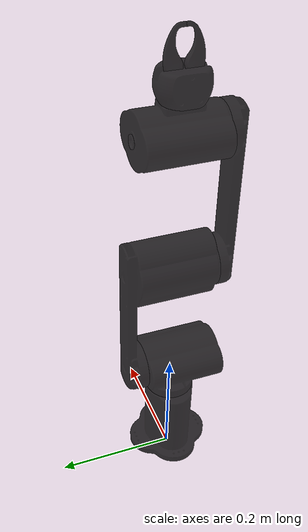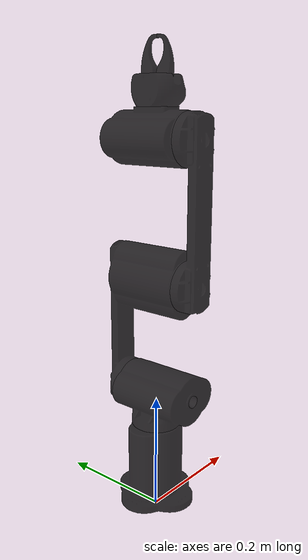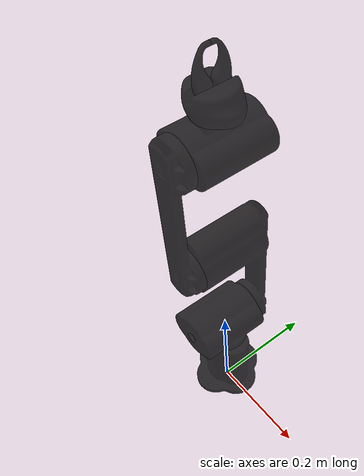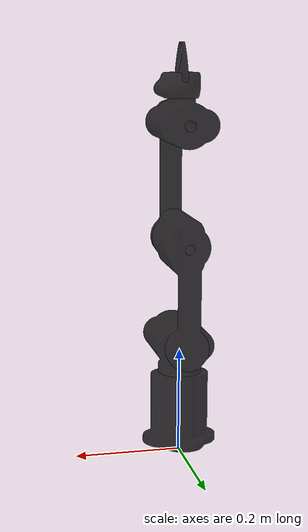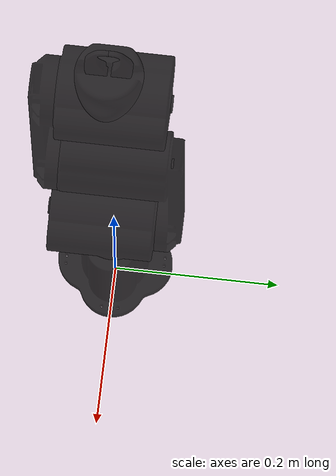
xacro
<?xml version="1.0"?>
<robot name="mover4" xmlns:xacro="http://www.ros.org/wiki/xacro">
<xacro:include filename="$(find mover4_arm_description)/urdf/macro.xacro" />
<xacro:base_footprint_link_no_inertial_for_gasebo child_link="base_link" />

<xacro:include filename="$(find mover4_arm_description)/urdf/mover4_arm_hardware_macro.urdf.xacro" />
<xacro:mover4_arm_hardware/>
</robot>

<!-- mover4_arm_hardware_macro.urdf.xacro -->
<robot name="mover4" xmlns:xacro="http://www.ros.org/wiki/xacro">
<xacro:macro name="mover4_arm_hardware">
<link name="base_link">
<pose>0 0 0.1 0 0 0</pose>
    <inertial>
      <mass value="0.5"/>
      <origin xyz="0 0 0"/>
      <inertia ixx="0.0001" ixy="0.0" ixz="0.0" iyy="0.0001" iyz="0.0" izz="0.0001"/>
    </inertial>

    <visual>
	<origin rpy="0 0 0" xyz="0 0 0.0"/>
      <geometry>
	<mesh filename="package://robko18_description/meshes/Joint0.dae" scale="0.001 0.001 0.001"/>
      </geometry>
      <material name="black">
        <color rgba="0 0 0 0.8"/>
      </material>
    </visual>
    <collision>
      <origin xyz="0 0 0" rpy="0 0 0" />
      <geometry>
        <mesh filename="package://robko18_description/meshes/Joint0Coll.dae" scale="0.001 0.001 0.001"/>
      </geometry>
    </collision>
  </link>

 <link name="geoJoint1">
     <inertial>
      <mass value="0.0001"/>
      <origin xyz="0 0 0"/>
      <inertia ixx="0.0001" ixy="0.0" ixz="0.0" iyy="0.0001" iyz="0.0" izz="0.0001"/>
    </inertial>

    <visual>
	<origin rpy="0 0 0" xyz="0 0 0.0"/>
      <geometry>
	<mesh filename="package://robko18_description/meshes/Joint1.dae" scale="0.001 0.001 0.001"/>
      </geometry>
      <material name="black">
        <color rgba="0 0 0 0.8"/>
      </material>
    </visual>
    <collision>
      <origin xyz="0 0 0.0" rpy="0 0 0" />
      <geometry>
        <mesh filename="package://robko18_description/meshes/Joint1Coll.dae" scale="0.001 0.001 0.001"/>
      </geometry>
    </collision>
  </link>

 <link name="geoJoint2">
     <inertial>
      <mass value="0.0001"/>
      <origin xyz="0 0 0"/>
      <inertia ixx="0.0001" ixy="0.0" ixz="0.0" iyy="0.0001" iyz="0.0" izz="0.0001"/>
    </inertial>

    <visual>
	<origin rpy="0 0 0" xyz="0 0 0.0"/>
      <geometry>
	<mesh filename="package://robko18_description/meshes/Joint2.dae" scale="0.001 0.001 0.001"/>
      </geometry>
      <material name="black">
        <color rgba="0 0 0 0.8"/>
      </material>
    </visual>
    <collision>
      <origin xyz="0 0 0" rpy="0 0 0" />
      <geometry>
        <mesh filename="package://robko18_description/meshes/Joint2Coll.dae" scale="0.001 0.001 0.001"/>
      </geometry>
    </collision>
  </link>

 <link name="geoJoint3">
     <inertial>
      <mass value="0.0001"/>
      <origin xyz="0 0 0"/>
      <inertia ixx="0.0001" ixy="0.0" ixz="0.0" iyy="0.0001" iyz="0.0" izz="0.0001"/>
    </inertial>

    <visual>
	<origin rpy="0 0 0" xyz="0 0 0.0"/>
      <geometry>
	<mesh filename="package://robko18_description/meshes/Joint3.dae" scale="0.001 0.001 0.001"/>
      </geometry>
      <material name="black">
        <color rgba="0 0 0 0.8"/>
      </material>
    </visual>
    <collision>
      <origin xyz="0 0 0" rpy="0 0 0" />
      <geometry>
        <mesh filename="package://robko18_description/meshes/Joint3Coll.dae" scale="0.001 0.001 0.001"/>
      </geometry>
    </collision>
  </link>

 <link name="geoJoint4">
     <inertial>
      <mass value="0.0001"/>
      <origin xyz="0 0 0"/>
      <inertia ixx="0.0001" ixy="0.0" ixz="0.0" iyy="0.0001" iyz="0.0" izz="0.0001"/>
    </inertial>

    <visual>
	<origin rpy="0 0 0" xyz="0 0 0.0"/>
      <geometry>
	<mesh filename="package://robko18_description/meshes/Joint4.dae" scale="0.001 0.001 0.001"/>
      </geometry>
      <material name="black">
        <color rgba="0 0 0 0.8"/>
      </material>
    </visual>
    <collision>
      <origin xyz="0 0 0" rpy="0 0 0" />
      <geometry>
        <mesh filename="package://robko18_description/meshes/Joint4Coll.dae" scale="0.001 0.001 0.001"/>
      </geometry>
    </collision>
  </link>

<link name="gripperBody">
    <inertial>
      <mass value="0.0001"/>
      <origin xyz="0 0 0"/>
      <inertia ixx="0.0001" ixy="0.0" ixz="0.0" iyy="0.0001" iyz="0.0" izz="0.0001"/>
    </inertial>

    <visual>
	<origin rpy="0 0 0" xyz="0 0 0.0"/>
      <geometry>
	<mesh filename="package://robko18_description/meshes/GripperBase.dae" scale="0.001 0.001 0.001"/>
      </geometry>
      <material name="black">
        <color rgba="0 0 0 0.8"/>
      </material>
    </visual>
    <collision>
      <origin xyz="0 0 0" rpy="0 0 0" />
      <geometry>
        <mesh filename="package://robko18_description/meshes/GripperBaseColl.dae" scale="0.001 0.001 0.001"/>
      </geometry>
    </collision>
  </link>

<link name="gripperFinger1">
    <inertial>
      <mass value="0.0001"/>
      <origin xyz="0 0 0"/>
      <inertia ixx="0.0001" ixy="0.0" ixz="0.0" iyy="0.0001" iyz="0.0" izz="0.0001"/>
    </inertial>

    <visual>
	<origin rpy="0 0 0" xyz="0 0 0.0"/>
      <geometry>
	<mesh filename="package://robko18_description/meshes/GripperFinger.dae" scale="0.001 0.001 0.001"/>
      </geometry>
      <material name="black">
        <color rgba="0 0 0 0.8"/>
      </material>
    </visual>
    <collision>
      <origin xyz="0 0 0" rpy="0 0 0" />
      <geometry>
        <mesh filename="package://robko18_description/meshes/GripperFingerColl.dae" scale="0.001 0.001 0.001"/>
      </geometry>
    </collision>
  </link>

<link name="gripperFinger2">
    <inertial>
      <mass value="0.0001"/>
      <origin xyz="0 0 0"/>
      <inertia ixx="0.0001" ixy="0.0" ixz="0.0" iyy="0.0001" iyz="0.0" izz="0.0001"/>
    </inertial>

    <visual>
	<origin rpy="0 0 0" xyz="0 0 0.0"/>
      <geometry>
	<mesh filename="package://robko18_description/meshes/GripperFinger.dae" scale="0.001 0.001 0.001"/>
      </geometry>
      <material name="black">
        <color rgba="0 0 0 0.8"/>
      </material>
    </visual>
 <collision>
      <origin xyz="0 0 0" rpy="0 0 0" />
      <geometry>
        <mesh filename="package://robko18_description/meshes/GripperFingerColl.dae" scale="0.001 0.001 0.001"/>
      </geometry>
    </collision>
  </link>

<joint name="joint0" type="continuous">
    <axis xyz="0 0 1"/>
    <parent link="base_link"/>
    <child link="geoJoint1"/>
    <origin rpy="0 0 0" xyz="0 0 0.158"/>
    <limit effort="100" velocity="30"/>
    <joint_properties damping="0.0" friction="0.0"/>
  </joint>
<joint name="joint1" type="continuous">
    <axis xyz="0 1 0"/>
    <parent link="geoJoint1"/>
    <child link="geoJoint2"/>
    <origin rpy="0 0 0" xyz="0 0 0.060"/>
    <limit effort="100" velocity="100"/>
    <joint_properties damping="0.0" friction="0.0"/>
  </joint>
<joint name="joint2" type="continuous">
    <axis xyz="0 1 0"/>
    <parent link="geoJoint2"/>
    <child link="geoJoint3"/>
    <origin rpy="0 0 0" xyz="0 0 0.190"/>
    <limit effort="100" velocity="100"/>
    <joint_properties damping="0.0" friction="0.0"/>
  </joint>
 <joint name="joint3" type="continuous">
    <axis xyz="0 1 0"/>
    <parent link="geoJoint3"/>
    <child link="geoJoint4"/>
    <origin rpy="0 0 0" xyz="0 0 0.220"/>
    <limit effort="100" velocity="100"/>
    <joint_properties damping="0.0" friction="0.0"/>
  </joint>

<joint name="gripperFixed" type="fixed">
    <parent link="geoJoint4"/>
    <child link="gripperBody"/>
    <origin rpy="0 0 0" xyz="0 0 0.046"/>
  </joint>
<joint name="gripper1" type="continuous">
    <axis xyz="1 0 0"/>
    <parent link="gripperBody"/>
    <child link="gripperFinger1"/>
    <origin rpy="0 0 3.141" xyz="0.0 0.01 0.03"/>
    <limit effort="100" velocity="100"/>
    <joint_properties damping="0.0" friction="0.0"/>
  </joint>
<joint name="gripper2" type="continuous">
    <axis xyz="1 0 0"/>
    <parent link="gripperBody"/>
    <child link="gripperFinger2"/>
     <origin rpy="0 0 0" xyz="0.0 -0.01 0.03"/>
    <limit effort="100" velocity="100"/>
    <joint_properties damping="0.0" friction="0.0"/>
  </joint>
</xacro:macro>

</robot>
